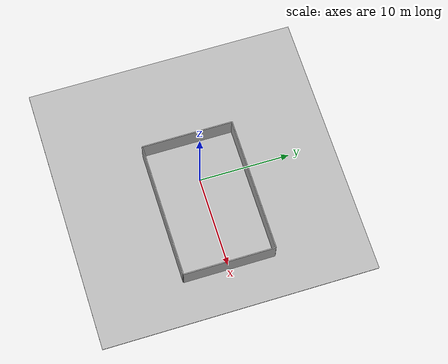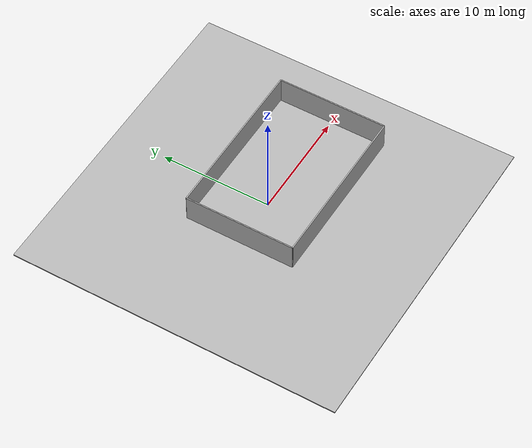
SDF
<?xml version='1.0' encoding='ASCII'?>
<sdf version='1.7'>
  <world name='empty_world'>
    <physics type="ode">
      <max_step_size>0.003</max_step_size>
      <real_time_factor>1.0</real_time_factor>
    </physics>
    <plugin name="gz::sim::systems::Physics" filename="gz-sim-physics-system" />
    <plugin name="gz::sim::systems::UserCommands" filename="gz-sim-user-commands-system" />
    <plugin name="gz::sim::systems::SceneBroadcaster" filename="gz-sim-scene-broadcaster-system" />
    <plugin name="gz::sim::systems::Contact" filename="gz-sim-contact-system" />

    <!-- TODO(rkreinin): Fix lighting so that spawning multiple robots does not crash the sim-->
   <light type="directional" name="sun">
      <cast_shadows>0</cast_shadows>
      <pose>-5 -3 10 0 0 0</pose>
      <diffuse>1 1 1 1</diffuse>
      <specular>1 1 1 1</specular>
      <direction>0 0 -1</direction>
    </light>

    <scene>
      <ambient>0.8 0.8 0.8 1</ambient>
      <background>0.9 0.9 0.9 1</background>
    </scene>

    <model name="ground_plane">
      <static>true</static>
      <pose>0 0 0 0 0 0</pose>

      <link name="link">
        <collision name="collision">
          <pose>0 0 -0.05 0 0 0</pose>
          <geometry>
            <box>
              <size>30 30 0.1</size>
            </box>
          </geometry>
        </collision>

        <visual name="visual">
          <pose>0 0 -0.05 0 0 0</pose>
          <geometry>
            <box>
              <size>30 30 0.1</size>
            </box>
          </geometry>
          <material>
            <ambient>0.7 0.7 0.7 1</ambient>
            <diffuse>0.7 0.7 0.7 1</diffuse>
          </material>
        </visual>
      </link>
    </model>

    <model name="wall_1">
      <pose>3 5 1 0 0 0</pose>

      <link name="link">

        <collision name="collision">
          <geometry>
            <box>
              <size>15 0.1 3</size>
            </box>
          </geometry>
        </collision>

        <visual name="visual">
          <geometry>
            <box>
              <size>15 0.1 3</size>
            </box>
          </geometry>
        </visual>

      </link>
    </model>

    <model name="wall_2">
      <pose>3 -5 1 0 0 0</pose>

      <link name="link">

        <collision name="collision">
          <geometry>
            <box>
              <size>15 0.1 3</size>
            </box>
          </geometry>
        </collision>

        <visual name="visual">
          <geometry>
            <box>
              <size>15 0.1 3</size>
            </box>
          </geometry>
        </visual>
      </link>
    </model>

    <model name="wall_3">
      <pose>-4.5 0 1 0 0 1.5708</pose>
      <link name="link">
        <collision name="collision">
          <geometry>
            <box>
              <size>10 0.1 3</size>
            </box>
          </geometry>
        </collision>

        <visual name="visual">
          <geometry>
            <box>
              <size>10 0.1 3</size>
            </box>
          </geometry>
        </visual>
      </link>
    </model>

    <model name="wall_4">

      <pose>10.5 0 1 0 0 1.5708</pose>

      <link name="link">
        <collision name="collision">
          <geometry>
            <box>
              <size>10 0.1 3</size>
            </box>
          </geometry>
        </collision>

        <visual name="visual">
          <geometry>
            <box>
              <size>10 0.1 3</size>
            </box>
          </geometry>
        </visual>
      </link>
    </model>

  </world>
</sdf>
